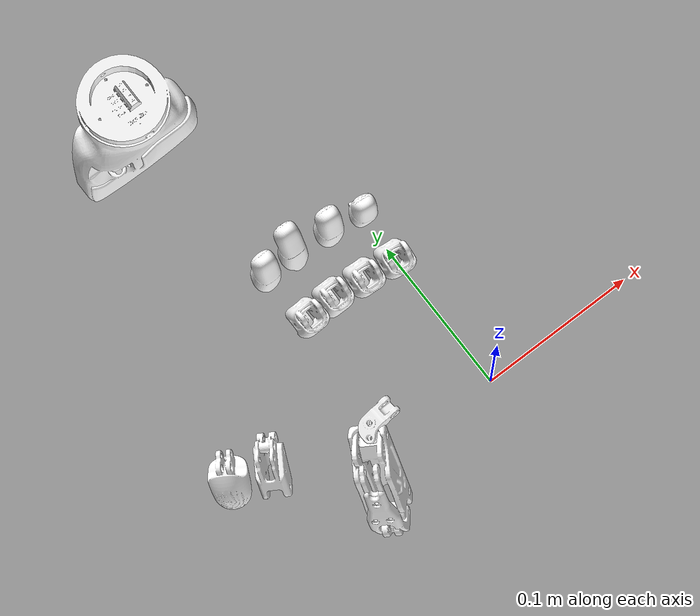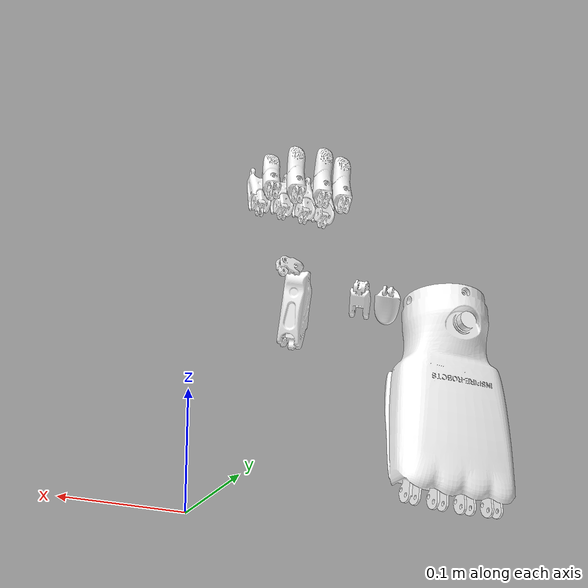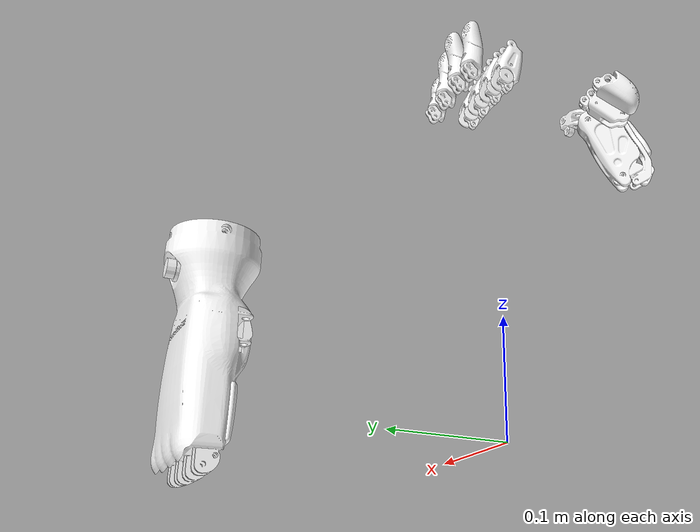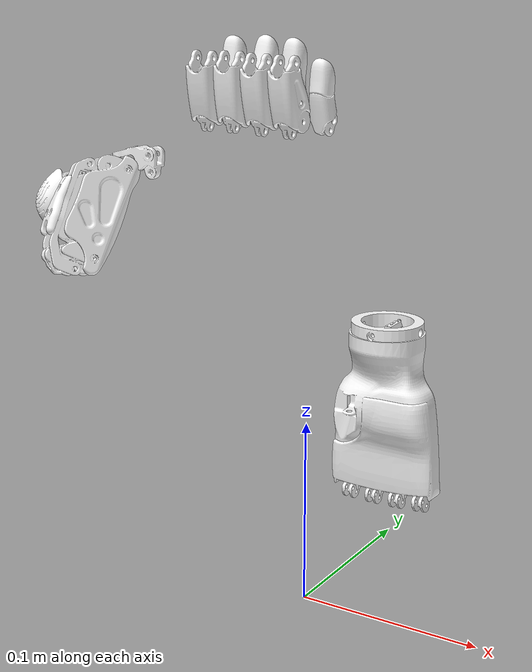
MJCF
<mujoco model="inspire_hand_r">
  <compiler angle="radian" autolimits="true" meshdir="meshes"/>
  <statistic meansize="0.0283996" extent="0.249469" center="-0.076948 0.0118984 0.248973"/>

  <visual>
      <map fogstart="3" fogend="5" force="0.1"></map>
      <quality shadowsize="4096"></quality>
  </visual>

  <default>
    <default class="base">
        <joint axis="0 0 1" range="-0.47 0.47"/>
        <position ctrlrange="-0.47 0.47"/>
    </default>
    <default class="proximal">
      <joint range="-0.196 1.61"/>
      <position ctrlrange="-0.196 1.61"/>
    </default>
    <default class="medial">
      <joint range="-0.174 1.709"/>
      <position ctrlrange="-0.174 1.709"/>
    </default>
    <default class="distal">
      <joint range="-0.227 1.618"/>
      <position ctrlrange="-0.227 1.618"/>
    </default>
    <default class="thumb_base">
        <joint range="0.263 1.396"/>
        <position ctrlrange="0 3.14" kp="0.5"/>
    </default>
    <default class="right_hand">
      <joint limited="true" damping="0.05" armature="0.0002" frictionloss="0.01"/>
      <general ctrllimited="true" forcelimited="true"></general>
      <geom friction="1 0.005 0.001" condim="3" margin="0.0005" contype="1" conaffinity="1"></geom>
    </default>

    <default class="robot0:D_Vizual">
        <geom material="robot0:MatViz" contype="0" conaffinity="0" group="1" type="mesh"></geom>
    </default>
    <default class="robot0:DC_Hand">
        <geom material="robot0:MatColl" contype="1" conaffinity="0" group="4"></geom>
    </default>
  </default>

  <asset>
    <material name="robot0:MatViz" specular="0.75" shininess="0.1" reflectance="0.5" rgba="0.93 0.93 0.93 1"></material>
    <material name="robot0:MatColl" specular="1" shininess="0.3" reflectance="0.5" rgba="0.4 0.5 0.6 1"></material>
    <mesh name="R_hand_base_link" file="R_hand_base_link.STL"/>
    <mesh name="R_thumb_proximal_base" file="R_thumb_proximal_base.STL"/>
    <mesh name="R_thumb_proximal" file="R_thumb_proximal.STL"/>
    <mesh name="R_thumb_intermediate" file="R_thumb_intermediate.STL"/>
    <mesh name="R_thumb_distal" file="R_thumb_distal.STL"/>
    <mesh name="R_index_proximal" file="R_index_proximal.STL"/>
    <mesh name="R_index_distal" file="R_index_distal.STL"/>
    <mesh name="R_middle_proximal" file="R_middle_proximal.STL"/>
    <mesh name="R_middle_distal" file="R_middle_distal.STL"/>
    <mesh name="R_ring_proximal" file="R_ring_proximal.STL"/>
    <mesh name="R_ring_distal" file="R_ring_distal.STL"/>
    <mesh name="R_pinky_proximal" file="R_pinky_proximal.STL"/>
    <mesh name="R_pinky_distal" file="R_pinky_distal.STL"/>
  </asset>

  <worldbody>
    <body childclass="right_hand">
      <body name="R_hand_base">
      <geom class="robot0:D_Vizual" name="robot0:D_Vizual_Base" quat="0.707107 -0.707107 0 0" type="mesh" rgba="1 1 1 1" mesh="R_hand_base_link"/>
      <geom class="robot0:DC_Hand" name="robot0:DC_Hand_Base" type="box" pos="-0.075 -0.01 0.25" quat="0.707107 -0.707107 0 0" size="0.04 0.0111 0.05" rgba="0.4 0.5 0.6 0.1"></geom>
      </body>
      <body name="R_thumb_proximal_base" pos="-0.098633 -0.011364 0.23173" quat="0.990013 1.83152e-06 -0.140974 2.57024e-07">
        <inertial pos="-0.0048772 -0.010163 0.00044069" quat="0.075637 0.631378 -0.107678 0.764229" mass="0.0018869" diaginertia="8.66028e-08 6.87321e-08 4.94192e-08"/>
        <joint name="R_thumb_MCP_joint1" pos="0 0 0" axis="0 -1 0" range="0.2 1.3"/>
        <geom class="robot0:D_Vizual" name="robot0:D_Vizual_Thumb_1" type="mesh" rgba="1 1 1 1" mesh="R_thumb_proximal_base"/>
        <geom class="robot0:DC_Hand" name="robot0:DC_Hand_Thumb_1" type="mesh" rgba="1 1 1 1" mesh="R_thumb_proximal_base"/>
        <body name="R_thumb_proximal" pos="-0.0115 -0.011843 0" euler="1.571 2.577 -1.571">
          <inertial pos="-3.8592e-05 0.02533 -0.0017007" quat="0.656826 0.754039 0.00146914 -0.00128614" mass="0.0066075" diaginertia="2.78601e-06 2.43932e-06 8.64597e-07"/>
          <joint name="R_thumb_MCP_joint2" pos="0 0 0" axis="1 0 0" range="0 0.5"/>
          <geom class="robot0:D_Vizual" name="robot0:D_Vizual_Thumb_2" type="mesh" rgba="1 1 1 1" mesh="R_thumb_proximal"/>
          <geom class="robot0:DC_Hand" name="robot0:DC_Hand_Thumb_2" type="mesh" rgba="1 1 1 1" mesh="R_thumb_proximal"/>
          <body name="R_thumb_intermediate" pos="0 0.055863 0.0039241" quat="1.0 -0.0 0 0">
            <inertial pos="2.8437e-07 0.0072526 -0.0064293" quat="0.575988 0.817458 -0.000107087 6.96147e-05" mass="0.0037847" diaginertia="4.6531e-07 4.48088e-07 2.45662e-07"/>
            <joint name="R_thumb_PIP_joint" pos="0 0 0" axis="1 0 0" range="0 1"/>
            <geom class="robot0:D_Vizual" name="robot0:D_Vizual_Thumb_3" type="mesh" rgba="1 1 1 1" mesh="R_thumb_intermediate"/>
            <geom class="robot0:DC_Hand" name="robot0:DC_Hand_Thumb_3" type="mesh" rgba="1 1 1 1" mesh="R_thumb_intermediate"/>
            <body name="R_thumb_distal" pos="0 0.022558 -0.0020717" quat="0.999983 -0.00582097 0 0">
              <inertial pos="-3.3054e-06 0.010511 -0.00057863" quat="0.624404 0.781098 0.00147531 -0.00199963" mass="0.0033441" diaginertia="2.0026e-07 1.95252e-07 8.15973e-08"/>
              <joint name="R_thumb_DIP_joint" pos="0 0 0" axis="1 0 0" range="0 1.2"/>
              <geom class="robot0:D_Vizual" name="robot0:D_Vizual_Thumb_4" type="mesh" rgba="1 1 1 1" mesh="R_thumb_distal"/>
              <geom class="robot0:DC_Hand" name="robot0:DC_Hand_Thumb_4" type="mesh" rgba="1 1 1 1" mesh="R_thumb_distal"/>
            </body>
          </body>
        </body>
      </body>
      <body name="R_index_proximal" pos="-0.094559 0.054025 0.24897" quat="-0.00212755 -0.0173224 0.992416 0.121677">
        <inertial pos="0.0099008 0.011884 0.0016958" quat="0.629448 0.777042 2.20645e-05 -2.45535e-05" mass="0.0042403" diaginertia="6.9398e-07 6.62877e-07 2.10913e-07"/>
        <joint name="R_index_MCP_joint" pos="0 0 0" axis="1 0 0" range="0 1.7"/>
        <geom class="robot0:D_Vizual" name="robot0:D_Vizual_Index_1" type="mesh" rgba="1 1 1 1" mesh="R_index_proximal"/>
        <geom class="robot0:DC_Hand" name="robot0:DC_Hand_Index_1" type="mesh" rgba="1 1 1 1" mesh="R_index_proximal"/>
        <body name="R_index_distal" pos="0.001575 0.030445 0.010275" quat="0.999755 0.0221422 0 0">
          <inertial pos="0.0083258 0.019591 0.0019565" quat="0.581929 0.813239 4.32051e-07 6.03786e-07" mass="0.0045683" diaginertia="7.8179e-07 7.72465e-07 8.47248e-08"/>
          <joint name="R_index_DIP_joint" pos="0 0 0" axis="1 0 0" range="0 1.6"/>
          <geom class="robot0:D_Vizual" name="robot0:D_Vizual_Index_2" type="mesh" rgba="1 1 1 1" mesh="R_index_distal"/>
          <geom class="robot0:DC_Hand" name="robot0:DC_Hand_Index_2" type="mesh" rgba="1 1 1 1" mesh="R_index_distal"/>
        </body>
      </body>
      <body name="R_middle_proximal" pos="-0.077068 0.054042 0.24897" quat="-3.64455e-06 4.57949e-07 0.992198 0.124673">
        <inertial pos="0.008065 0.011884 0.0016958" quat="0.629448 0.777042 2.15784e-05 -2.62734e-05" mass="0.0042403" diaginertia="6.9397e-07 6.62866e-07 2.10914e-07"/>
        <joint name="R_middle_MCP_joint" pos="0 0 0" axis="1 0 0" range="0 1.7"/>
        <geom class="robot0:D_Vizual" name="robot0:D_Vizual_Middle_1" type="mesh" rgba="1 1 1 1" mesh="R_middle_proximal"/>
        <geom class="robot0:DC_Hand" name="robot0:DC_Hand_Middle_1" type="mesh" rgba="1 1 1 1" mesh="R_middle_proximal"/>
        <body name="R_middle_distal" pos="0.0016673 0.030445 0.010275" quat="0.999363 0.0356989 0 0">
          <inertial pos="0.0063978 0.020807 0.0018039" quat="0.589614 0.807685 -6.23875e-05 4.98373e-05" mass="0.0050396" diaginertia="9.8384e-07 9.73281e-07 9.13985e-08"/>
          <joint name="R_middle_DIP_joint" pos="0 0 0" axis="1 0 0" range="0 1.6"/>
          <geom class="robot0:D_Vizual" name="robot0:D_Vizual_Middle_2" type="mesh" rgba="1 1 1 1" mesh="R_middle_distal"/>
          <geom class="robot0:DC_Hand" name="robot0:DC_Hand_Middle_2" type="mesh" rgba="1 1 1 1" mesh="R_middle_distal"/>
        </body>
      </body>
      <body name="R_ring_proximal" pos="-0.057894 0.053119 0.24897" quat="0.00325992 0.0259732 0.991858 0.12463">
        <inertial pos="0.0080207 0.011884 0.0016959" quat="0.629449 0.777042 1.88154e-05 -2.40552e-05" mass="0.0042403" diaginertia="6.9397e-07 6.62866e-07 2.10914e-07"/>
        <joint name="R_ring_MCP_joint" pos="0 0 0" axis="1 0 0" range="0 1.7"/>
        <geom class="robot0:D_Vizual" name="robot0:D_Vizual_Ring_1" type="mesh" rgba="1 1 1 1" mesh="R_ring_proximal"/>
        <geom class="robot0:DC_Hand" name="robot0:DC_Hand_Ring_1" type="mesh" rgba="1 1 1 1" mesh="R_ring_proximal"/>
        <body name="R_ring_distal" pos="0 0.030445 0.010275" quat="0.999803 0.0198727 0 0">
          <inertial pos="0.0080209 0.019591 0.0019565" quat="0.581926 0.813242 0 0" mass="0.0045683" diaginertia="7.8177e-07 7.72447e-07 8.47227e-08"/>
          <joint name="R_ring_DIP_joint" pos="0 0 0" axis="1 0 0" range="0 1.6"/>
          <geom class="robot0:D_Vizual" name="robot0:D_Vizual_Ring_2" type="mesh" rgba="1 1 1 1" mesh="R_ring_distal"/>
          <geom class="robot0:DC_Hand" name="robot0:DC_Hand_Ring_2" type="mesh" rgba="1 1 1 1" mesh="R_ring_distal"/>
        </body>
      </body>
      <body name="R_pinky_proximal" pos="-0.038882 0.051205 0.24897" quat="-0.00652853 -0.0519273 -0.990838 -0.124502">
        <inertial pos="0.0078887 0.011884 0.0016959" quat="0.629449 0.777042 2.01737e-05 -2.54775e-05" mass="0.0042403" diaginertia="6.9397e-07 6.62866e-07 2.10914e-07"/>
        <joint name="R_pinky_MCP_joint" pos="0 0 0" axis="1 0 0" range="0 1.7"/>
        <geom class="robot0:D_Vizual" name="robot0:D_Vizual_Pinky_1" type="mesh" rgba="1 1 1 1" mesh="R_pinky_proximal"/>
        <geom class="robot0:DC_Hand" name="robot0:DC_Hand_Pinky_1" type="mesh" rgba="1 1 1 1" mesh="R_pinky_proximal"/>
        <body name="R_pinky_distal" pos="0 0.030445 0.010275" quat="0.999822 -0.0188444 0 0">
          <inertial pos="0.0078857 0.016239 0.0022243" quat="0.553304 0.832968 0.0036878 -0.00236477" mass="0.0035996" diaginertia="4.4867e-07 4.43716e-07 6.56536e-08"/>
          <joint name="R_pinky_DIP_joint" pos="0 0 0" axis="1 0 0" range="0 1.6"/>
          <geom class="robot0:D_Vizual" name="robot0:D_Vizual_Pinky_2" type="mesh" rgba="1 1 1 1" mesh="R_pinky_distal"/>
          <geom class="robot0:DC_Hand" name="robot0:DC_Hand_Pinky_2" type="mesh" rgba="1 1 1 1" mesh="R_pinky_distal"/>
        </body>
        </body>
      </body>
  </worldbody>

  <contact>
    <exclude body1="R_hand_base" body2="R_index_proximal"/>
    <exclude body1="R_hand_base" body2="R_middle_proximal"/>
    <exclude body1="R_hand_base" body2="R_ring_proximal"/>
    <exclude body1="R_hand_base" body2="R_pinky_proximal"/>
    <exclude body1="R_hand_base" body2="R_thumb_proximal"/>
    <exclude body1="R_hand_base" body2="R_thumb_proximal_base"/>
    <exclude body1="R_thumb_proximal_base" body2="R_thumb_proximal"/>
    <exclude body1="R_thumb_proximal" body2="R_thumb_intermediate"/>
    <exclude body1="R_thumb_proximal_base" body2="R_thumb_intermediate"/>
    <exclude body1="R_thumb_intermediate" body2="R_thumb_distal"/>
  </contact>

  <tendon>
    <fixed name="index_tendon" limited="true" range="-0.001 0.001">
        <joint joint="R_index_MCP_joint" coef="0.00705"/>
        <joint joint="R_index_DIP_joint" coef="-0.01005" />
    </fixed>
    <fixed name="middle_tendon" limited="true" range="-0.001 0.001">
        <joint joint="R_middle_MCP_joint" coef="0.00705"/>
        <joint joint="R_middle_DIP_joint" coef="-0.01005" />
    </fixed>
    <fixed name="ring_tendon" limited="true" range="-0.001 0.001">
        <joint joint="R_ring_MCP_joint" coef="0.00705"/>
        <joint joint="R_ring_DIP_joint" coef="-0.01005" />
    </fixed>
    <fixed name="pinky_tendon" limited="true" range="-0.001 0.001">
        <joint joint="R_pinky_MCP_joint" coef="0.00705"/>
        <joint joint="R_pinky_DIP_joint" coef="-0.01005" />
    </fixed>

    <fixed name="thumb_tendon_1" limited="true" range="-0.001 0.001">
        <joint joint="R_thumb_MCP_joint2" coef="-0.01205"/>
        <joint joint="R_thumb_PIP_joint" coef="0.00505"/>
        <joint joint="R_thumb_DIP_joint" coef="0.00305" />
    </fixed>
  </tendon>

  <actuator>
    <position name="index_tendon_a" joint="R_index_MCP_joint" class="thumb_base"/>
    <position name="middle_tendon_a" joint="R_middle_MCP_joint" class="thumb_base"/>
    <position name="ring_tendon_a" joint="R_ring_MCP_joint" class="thumb_base"/>
    <position name="pinky_tendon_a" joint="R_pinky_MCP_joint" class="thumb_base"/>
    <position name="thumb_tendon_b" joint="R_thumb_MCP_joint2" class="thumb_base"/>
    <position name="thumb_joint_1" joint="R_thumb_MCP_joint1" class="thumb_base"/>
  </actuator>

</mujoco>
